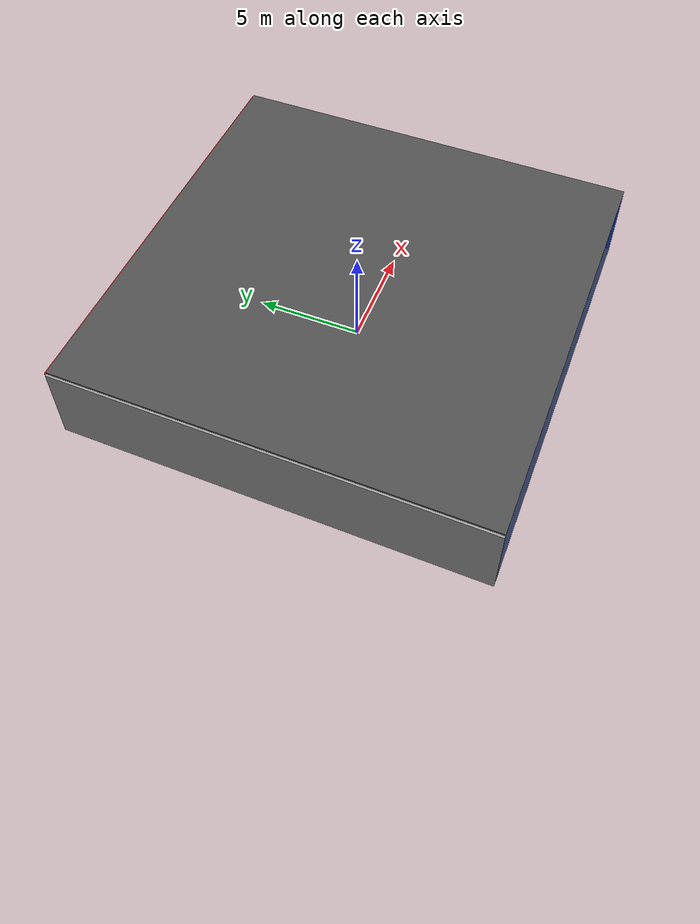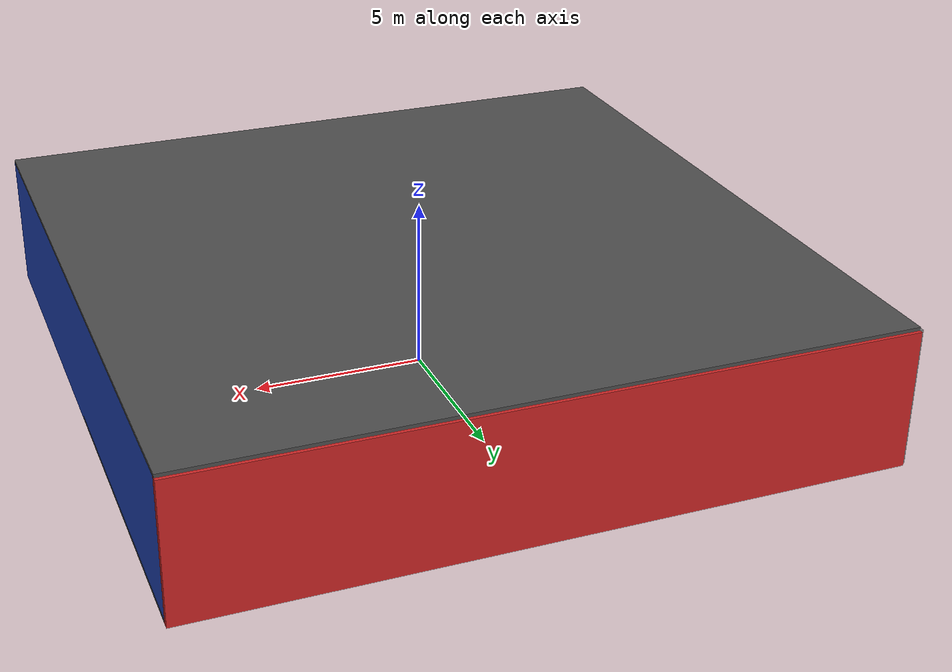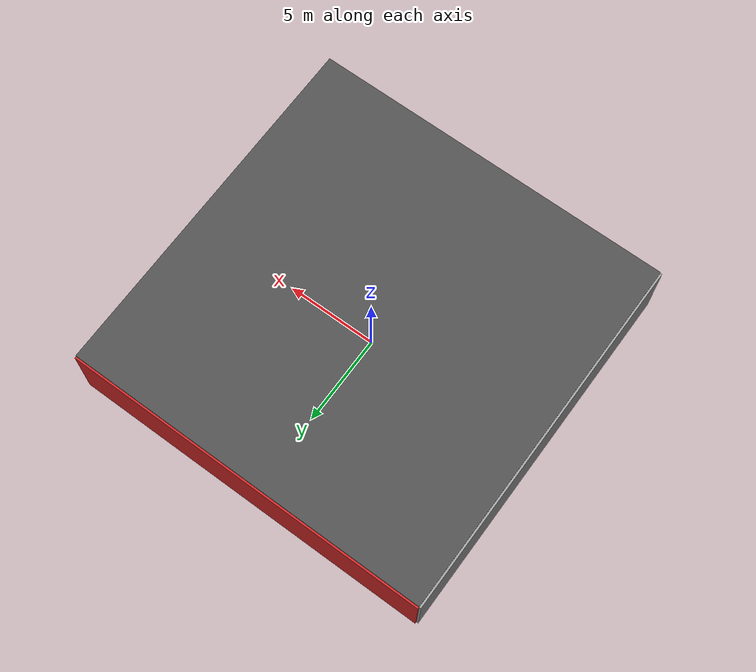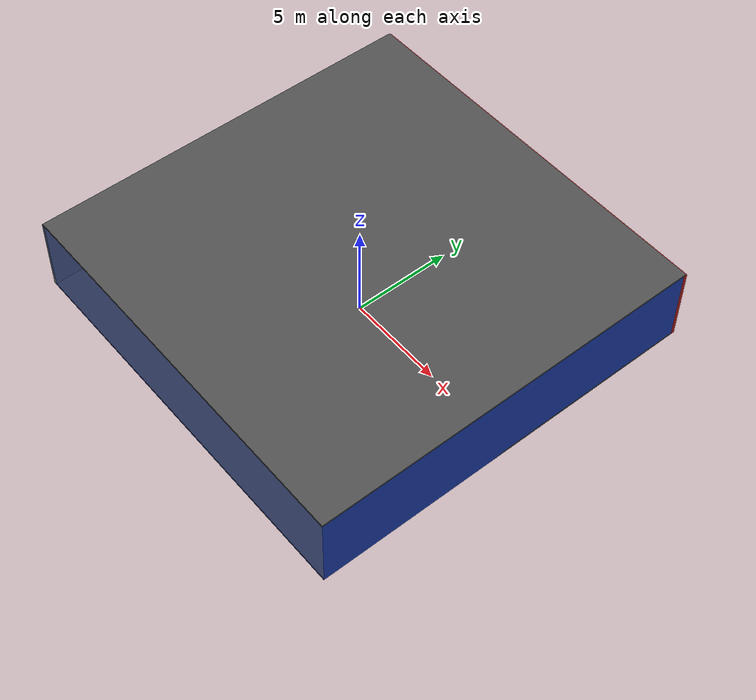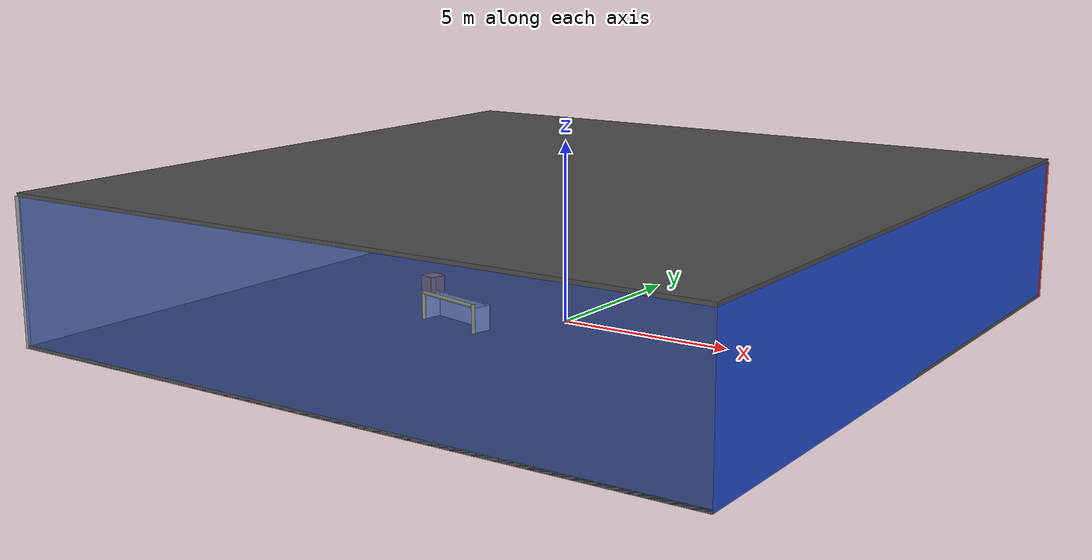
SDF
<sdf version="1.4">
 <world name="default">
  <physics type="ode">
   <max_step_size>0.001</max_step_size>
   <real_time_factor>1</real_time_factor>
   <real_time_update_rate>1000</real_time_update_rate>
   <gravity>0 0 -9.8</gravity>
  </physics>
  <scene><ambient>0.4 0.4 0.4 1</ambient><background>0.7 0.7 0.7 1</background><shadows>1</shadows></scene>
  <model name="Surrounding">
   <static>1</static>
   <link name="Ceiling">
    <collision name="Ceiling_Collision"><geometry><box><size>20 20 0.1</size></box></geometry></collision>
    <visual name="Ceiling_Visual">
     <geometry><box><size>20 20 0.1</size></box></geometry>
     <material>
      <script><uri>file://media/materials/scripts/gazebo.material</uri><name>Gazebo/Road</name></script>
     </material>
    </visual>
    <pose>0 0 4.05 0 0 0</pose>
   </link>
   <link name="Wall_South">
    <collision name="Wall_South_Collision">
     <geometry><box><size>20 0 4</size></box></geometry>
     <pose>0 0 2 0 -0 0</pose>
    </collision>
    <visual name="Wall_South_Visual">
     <pose>0 0 2 0 -0 0</pose>
     <geometry><box><size>20 0 4</size></box></geometry>
     <material>
      <script><uri>file://media/materials/scripts/gazebo.material</uri><name>Gazebo/BlueTransparent</name></script>
     </material>
    </visual>
    <velocity_decay><linear>0</linear><angular>0</angular></velocity_decay>
    <pose>0 -10 0 0 -0 0</pose>
   </link>
   <link name="Wall_East">
    <collision name="Wall_21_Collision">
     <geometry><box><size>20 0 4</size></box></geometry>
     <pose>0 0 2 0 -0 0</pose>
    </collision>
    <visual name="Wall_21_Visual">
     <pose>0 0 2 0 -0 0</pose>
     <geometry><box><size>20 0 4</size></box></geometry>
     <material>
      <script><uri>file://media/materials/scripts/gazebo.material</uri><name>Gazebo/BlueGlow</name></script>
     </material>
    </visual>
    <velocity_decay><linear>0</linear><angular>0</angular></velocity_decay>
    <pose>10 0 0 0 -0 1.5708</pose>
   </link>
   <link name="Wall_North">
    <collision name="Wall_22_Collision">
     <geometry><box><size>20 0.2 4</size></box></geometry>
     <pose>0 0 2 0 -0 0</pose>
    </collision>
    <visual name="Wall_22_Visual">
     <pose>0 0 2 0 -0 0</pose>
     <geometry><box><size>20 0.2 4</size></box></geometry>
     <material>
      <script><uri>file://media/materials/scripts/gazebo.material</uri><name>Gazebo/RedBright</name></script>
     </material>
    </visual>
    <velocity_decay><linear>0</linear><angular>0</angular></velocity_decay>
    <pose>0 10 0 0 -0 0</pose>
   </link>
   <link name="Wall_West">
    <collision name="Wall_23_Collision">
     <geometry><box><size>20 0.2 4</size></box></geometry>
     <pose>0 0 2 0 -0 0</pose>
    </collision>
    <visual name="Wall_23_Visual">
     <pose>0 0 2 0 -0 0</pose>
     <geometry><box><size>20 0.2 4</size></box></geometry>
     <material>
      <script><uri>file://media/materials/scripts/gazebo.material</uri><name>Gazebo/Grey</name></script>
     </material>
    </visual>
    <velocity_decay><linear>0</linear><angular>0</angular></velocity_decay>
    <pose>-10 0 0 0 0 -1.5708</pose>
   </link>
   <link name="Ground_link">
    <collision name="collision">
     <pose>0 0 .05 0 -0 0</pose>
     <geometry><box><size>20 20 0.1</size></box></geometry>
    </collision>
    <visual name="visual">
     <pose>0 0 .05 0 -0 0</pose>
     <geometry><box><size>20 20 0.1</size></box></geometry>
     <material>
      <script><uri>file://media/materials/scripts/gazebo.material</uri><name>Gazebo/Road</name></script>
     </material>
    </visual>
   </link>
   <static>1</static>
  </model>
  <spherical_coordinates>
   <surface_model>EARTH_WGS84</surface_model>
   <latitude_deg>0</latitude_deg>
   <longitude_deg>0</longitude_deg>
   <elevation>0</elevation>
   <heading_deg>0</heading_deg>
  </spherical_coordinates>
  <light name="lightball_0" type="diffuse">
   <diffuse>0.8 0.8 0.8 1</diffuse>
   <specular>0.2 0.2 0.2 1</specular>
   <attenuation>
    <range>100</range>
    <constant>0.7</constant>
    <linear>0.01</linear>
    <quadratic>0.001</quadratic>
   </attenuation>
   <direction>-0.5 0.1 -0.9</direction>
   <pose>0.191280336402 -2.83484716382 1.51824119883 0 0 0</pose>
  </light>
  <light name="lightball_1" type="diffuse">
   <diffuse>0.8 0.8 0.8 1</diffuse>
   <specular>0.2 0.2 0.2 1</specular>
   <attenuation>
    <range>100</range>
    <constant>0.7</constant>
    <linear>0.01</linear>
    <quadratic>0.001</quadratic>
   </attenuation>
   <direction>-0.5 0.1 -0.9</direction>
   <pose>-4.74406419118 -4.68822495474 0.637327763806 0 0 0</pose>
  </light>
  <light name="lightball_2" type="diffuse">
   <diffuse>0.8 0.8 0.8 1</diffuse>
   <specular>0.2 0.2 0.2 1</specular>
   <attenuation>
    <range>100</range>
    <constant>0.7</constant>
    <linear>0.01</linear>
    <quadratic>0.001</quadratic>
   </attenuation>
   <direction>-0.5 0.1 -0.9</direction>
   <pose>1.33339956919 -6.12176110002 1.13626976547 0 0 0</pose>
  </light>
  <light name="lightball_3" type="diffuse">
   <diffuse>0.8 0.8 0.8 1</diffuse>
   <specular>0.2 0.2 0.2 1</specular>
   <attenuation>
    <range>100</range>
    <constant>0.7</constant>
    <linear>0.01</linear>
    <quadratic>0.001</quadratic>
   </attenuation>
   <direction>-0.5 0.1 -0.9</direction>
   <pose>-1.06995290164 2.67700981756 2.48005544811 0 0 0</pose>
  </light>
  <light name="lightball_4" type="diffuse">
   <diffuse>0.8 0.8 0.8 1</diffuse>
   <specular>0.2 0.2 0.2 1</specular>
   <attenuation>
    <range>100</range>
    <constant>0.7</constant>
    <linear>0.01</linear>
    <quadratic>0.001</quadratic>
   </attenuation>
   <direction>-0.5 0.1 -0.9</direction>
   <pose>0.842240661863 -8.68212882666 3.33693321323 0 0 0</pose>
  </light>
  <light name="lightball_5" type="diffuse">
   <diffuse>0.8 0.8 0.8 1</diffuse>
   <specular>0.2 0.2 0.2 1</specular>
   <attenuation>
    <range>100</range>
    <constant>0.7</constant>
    <linear>0.01</linear>
    <quadratic>0.001</quadratic>
   </attenuation>
   <direction>-0.5 0.1 -0.9</direction>
   <pose>-7.98033819509 -8.11846850825 3.0375448088 0 0 0</pose>
  </light>
  <light name="lightball_6" type="diffuse">
   <diffuse>0.8 0.8 0.8 1</diffuse>
   <specular>0.2 0.2 0.2 1</specular>
   <attenuation>
    <range>100</range>
    <constant>0.7</constant>
    <linear>0.01</linear>
    <quadratic>0.001</quadratic>
   </attenuation>
   <direction>-0.5 0.1 -0.9</direction>
   <pose>3.53611609836 -2.02255898044 2.00264631274 0 0 0</pose>
  </light>
  <light name="lightball_7" type="diffuse">
   <diffuse>0.8 0.8 0.8 1</diffuse>
   <specular>0.2 0.2 0.2 1</specular>
   <attenuation>
    <range>100</range>
    <constant>0.7</constant>
    <linear>0.01</linear>
    <quadratic>0.001</quadratic>
   </attenuation>
   <direction>-0.5 0.1 -0.9</direction>
   <pose>7.5614917172 7.01461073559 1.57118661873 0 0 0</pose>
  </light>
  <light name="lightball_8" type="diffuse">
   <diffuse>0.8 0.8 0.8 1</diffuse>
   <specular>0.2 0.2 0.2 1</specular>
   <attenuation>
    <range>100</range>
    <constant>0.7</constant>
    <linear>0.01</linear>
    <quadratic>0.001</quadratic>
   </attenuation>
   <direction>-0.5 0.1 -0.9</direction>
   <pose>1.03829919955 2.73984341085 1.67860775273 0 0 0</pose>
  </light>
  <light name="lightball_9" type="diffuse">
   <diffuse>0.8 0.8 0.8 1</diffuse>
   <specular>0.2 0.2 0.2 1</specular>
   <attenuation>
    <range>100</range>
    <constant>0.7</constant>
    <linear>0.01</linear>
    <quadratic>0.001</quadratic>
   </attenuation>
   <direction>-0.5 0.1 -0.9</direction>
   <pose>3.32816255768 -3.73276493031 2.31890180603 0 0 0</pose>
  </light>
  <light name="lightball_10" type="diffuse">
   <diffuse>0.8 0.8 0.8 1</diffuse>
   <specular>0.2 0.2 0.2 1</specular>
   <attenuation>
    <range>100</range>
    <constant>0.7</constant>
    <linear>0.01</linear>
    <quadratic>0.001</quadratic>
   </attenuation>
   <direction>-0.5 0.1 -0.9</direction>
   <pose>-7.10364855116 3.09788370463 3.59370808445 0 0 0</pose>
  </light>
  <include><uri>model://cabinet</uri><pose>-3.81418751734 -1.05605241492 0 0 0 2.84198689485</pose></include>
  <include><uri>model://cabinet</uri><pose>-3.54000353792 3.72271137826 0 0 0 0.0178481621217</pose></include>
  <include>
   <uri>model://robocup_3Dsim_goal</uri>
   <pose>-2.15733321375 -2.49215542456 0 0 0 1.34859652349</pose>
  </include>
  <include>
   <uri>model://construction_cone</uri>
   <pose>-0.324380697114 4.51565827044 0 0 0 0.860885223399</pose>
  </include>
  <include>
   <uri>model://robocup_3Dsim_goal</uri>
   <pose>-1.7918798433 8.17616632613 0 0 0 1.92188889426</pose>
  </include>
  <include><uri>model://table</uri><pose>4.96271247911 8.41531697393 0 0 0 0.795623769068</pose></include>
  <include>
   <uri>model://robocup_3Dsim_goal</uri>
   <pose>8.50251057931 8.1073422006 0 0 0 2.29801559315</pose>
  </include>
 </world>
</sdf>

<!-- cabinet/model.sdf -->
<sdf version="1.5">
  <model name="cabinet">
    <static>true</static>
    <link name="cabinet_bottom_plate">
      <inertial>
        <pose>0 0 -1 0 0 0</pose>
        <inertia>
          <ixx>2.050000</ixx>
          <ixy>0</ixy>
          <ixz>0</ixz>
          <iyy>2.050000</iyy>
          <iyz>0</iyz>
          <izz>2.050000</izz>
        </inertia>
        <mass>25.000000</mass>
      </inertial>
      <collision name="cabinet_bottom_plate_geom">
        <pose>0 0 0.010000 0 0 0</pose>
        <geometry>
          <box>
            <size>0.450000 0.450000 0.020000</size>
          </box>
        </geometry>
      </collision>
      <visual name="cabinet_bottom_plate_geom_visual">
        <pose>0 0 0.010000 0 0 0</pose>
        <geometry>
          <box>
            <size>0.450000 0.450000 0.020000</size>
          </box>
        </geometry>
        <material>
          <script>
            <uri>model://media/materials/scripts/gazebo.material</uri>
            <name>Gazebo/Wood</name>
          </script>
        </material>
      </visual>
      <collision name="cabinet_bottom_plate_geom_cabinet_back_plate">
        <pose>0.235000 0 0.510000 0 0 0</pose>
        <geometry>
          <box>
            <size>0.020000 0.450000 1.020000</size>
          </box>
        </geometry>
      </collision>
      <visual name="cabinet_bottom_plate_geom_cabinet_back_plate_visual">
        <pose>0.235000 0 0.510000 0 0 0</pose>
        <geometry>
          <box>
            <size>0.020000 0.450000 1.020000</size>
          </box>
        </geometry>
        <material>
          <script>
            <uri>model://media/materials/scripts/gazebo.material</uri>
            <name>Gazebo/Wood</name>
          </script>
        </material>
      </visual>
      <collision name="cabinet_bottom_plate_geom_cabinet_left_plate">
        <pose>0 0.235000 0.510000 0 0 0</pose>
        <geometry>
          <box>
            <size>0.450000 0.020000 1.020000</size>
          </box>
        </geometry>
      </collision>
      <visual name="cabinet_bottom_plate_geom_cabinet_left_plate_visual">
        <pose>0 0.235000 0.510000 0 0 0</pose>
        <geometry>
          <box>
            <size>0.450000 0.020000 1.020000</size>
          </box>
        </geometry>
        <material>
          <script>
            <uri>model://media/materials/scripts/gazebo.material</uri>
            <name>Gazebo/Wood</name>
          </script>
        </material>
      </visual>
      <collision name="cabinet_bottom_plate_geom_cabinet_middle_plate">
        <pose>0 0 0.510000 0 0 0</pose>
        <geometry>
          <box>
            <size>0.450000 0.450000 0.020000</size>
          </box>
        </geometry>
      </collision>
      <visual name="cabinet_bottom_plate_geom_cabinet_middle_plate_visual">
        <pose>0 0 0.510000 0 0 0</pose>
        <geometry>
          <box>
            <size>0.450000 0.450000 0.020000</size>
          </box>
        </geometry>
        <material>
          <script>
            <uri>model://media/materials/scripts/gazebo.material</uri>
            <name>Gazebo/Wood</name>
          </script>
        </material>
      </visual>
      <collision name="cabinet_bottom_plate_geom_cabinet_right_plate">
        <pose>0 -0.235000 0.510000 0 0 0</pose>
        <geometry>
          <box>
            <size>0.450000 0.020000 1.020000</size>
          </box>
        </geometry>
      </collision>
      <visual name="cabinet_bottom_plate_geom_cabinet_right_plate_visual">
        <pose>0 -0.235000 0.510000 0 0 0</pose>
        <geometry>
          <box>
            <size>0.450000 0.020000 1.020000</size>
          </box>
        </geometry>
        <material>
          <script>
            <uri>model://media/materials/scripts/gazebo.material</uri>
            <name>Gazebo/Wood</name>
          </script>
        </material>
      </visual>
      <collision name="cabinet_bottom_plate_geom_cabinet_top_plate">
        <pose>0 0 1.010000 0 0 0</pose>
        <geometry>
          <box>
            <size>0.450000 0.450000 0.020000</size>
          </box>
        </geometry>
      </collision>
      <visual name="cabinet_bottom_plate_geom_cabinet_top_plate_visual">
        <pose>0 0 1.010000 0 0 0</pose>
        <geometry>
          <box>
            <size>0.450000 0.450000 0.020000</size>
          </box>
        </geometry>
        <material>
          <script>
            <uri>model://media/materials/scripts/gazebo.material</uri>
            <name>Gazebo/Wood</name>
          </script>
        </material>
      </visual>
    </link>
  </model>
</sdf>

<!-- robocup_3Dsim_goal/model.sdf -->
<sdf version="1.5">
  <model name="robocup_3d_goal">
    <static>true</static>
    <link name="left_post">
      <pose>0 1.05 0.45 0 0 0</pose>
      <collision name="collision">
        <geometry>
          <cylinder>
            <radius>0.05</radius>
            <length>0.9</length>
          </cylinder>
        </geometry>
      </collision>
      <visual name="visual">
        <geometry>
          <cylinder>
            <radius>0.05</radius>
            <length>0.9</length>
          </cylinder>
        </geometry>
        <material>
          <script>
            <uri>file://media/materials/scripts/gazebo.material</uri>
            <name>Gazebo/ZincYellow</name>
          </script>
        </material>
      </visual>
    </link>
    <link name="left_support_horiz_lower">
      <pose>0.30 1.05 0.01 0 0 0</pose>
      <collision name="collision">
        <geometry>
          <box>
            <size>0.50 0.02 0.02</size>
          </box>
        </geometry>
      </collision>
      <visual name="visual">
        <geometry>
          <box>
            <size>0.50 0.02 0.02</size>
          </box>
        </geometry>
        <material>
          <script>
            <uri>file://media/materials/scripts/gazebo.material</uri>
            <name>Gazebo/White</name>
          </script>
        </material>
      </visual>
    </link>
    <link name="left_support_horiz_upper">
      <pose>0.30 1.05 0.79 0 0 0</pose>
      <collision name="collision">
        <geometry>
          <box>
            <size>0.50 0.02 0.02</size>
          </box>
        </geometry>
      </collision>
      <visual name="visual">
        <geometry>
          <box>
            <size>0.50 0.02 0.02</size>
          </box>
        </geometry>
        <material>
          <script>
            <uri>file://media/materials/scripts/gazebo.material</uri>
            <name>Gazebo/White</name>
          </script>
        </material>
      </visual>
    </link>
    <link name="left_support_vertical">
      <pose>0.56 1.05 0.4 0 1.5708 0</pose>
      <collision name="collision">
        <geometry>
          <box>
            <size>0.80 0.02 0.02</size>
          </box>
        </geometry>
      </collision>
      <visual name="visual">
        <geometry>
          <box>
            <size>0.80 0.02 0.02</size>
          </box>
        </geometry>
        <material>
          <script>
            <uri>file://media/materials/scripts/gazebo.material</uri>
            <name>Gazebo/White</name>
          </script>
        </material>
      </visual>
    </link>
    <link name="right_support_horiz_lower">
      <pose>0.30 -1.05 0.01 0 0 0</pose>
      <collision name="collision">
        <geometry>
          <box>
            <size>0.50 0.02 0.02</size>
          </box>
        </geometry>
      </collision>
      <visual name="visual">
        <geometry>
          <box>
            <size>0.50 0.02 0.02</size>
          </box>
        </geometry>
        <material>
          <script>
            <uri>file://media/materials/scripts/gazebo.material</uri>
            <name>Gazebo/White</name>
          </script>
        </material>
      </visual>
    </link>
    <link name="right_support_horiz_upper">
      <pose>0.30 -1.05 0.79 0 0 0</pose>
      <collision name="collision">
        <geometry>
          <box>
            <size>0.50 0.02 0.02</size>
          </box>
        </geometry>
      </collision>
      <visual name="visual">
        <geometry>
          <box>
            <size>0.50 0.02 0.02</size>
          </box>
        </geometry>
        <material>
          <script>
            <uri>file://media/materials/scripts/gazebo.material</uri>
            <name>Gazebo/White</name>
          </script>
        </material>
      </visual>
    </link>
    <link name="right_support_vertical">
      <pose>0.56 -1.05 0.4 0 1.5708 0</pose>
      <collision name="collision">
        <geometry>
          <box>
            <size>0.80 0.02 0.02</size>
          </box>
        </geometry>
      </collision>
      <visual name="visual">
        <geometry>
          <box>
            <size>0.80 0.02 0.02</size>
          </box>
        </geometry>
        <material>
          <script>
            <uri>file://media/materials/scripts/gazebo.material</uri>
            <name>Gazebo/White</name>
          </script>
        </material>
      </visual>
    </link>
    <link name="center_support_horiz_lower">
      <pose>0.56 0 0.01 0 1.5708 0</pose>
      <collision name="collision">
        <geometry>
          <box>
            <size>0.02 2.08 0.02</size>
          </box>
        </geometry>
      </collision>
      <visual name="visual">
        <geometry>
          <box>
            <size>0.02 2.08 0.02</size>
          </box>
        </geometry>
        <material>
          <script>
            <uri>file://media/materials/scripts/gazebo.material</uri>
            <name>Gazebo/White</name>
          </script>
        </material>
      </visual>
    </link>
    <link name="center_support_horiz_upper">
      <pose>0.56 0 0.79 0 1.5708 0</pose>
      <collision name="collision">
        <geometry>
          <box>
            <size>0.02 2.08 0.02</size>
          </box>
        </geometry>
      </collision>
      <visual name="visual">
        <geometry>
          <box>
            <size>0.02 2.08 0.02</size>
          </box>
        </geometry>
        <material>
          <script>
            <uri>file://media/materials/scripts/gazebo.material</uri>
            <name>Gazebo/White</name>
          </script>
        </material>
      </visual>
    </link>
    <link name="right_post">
      <pose>0 -1.05 0.45 0 0 0</pose>
      <collision name="collision">
        <geometry>
          <cylinder>
            <radius>0.05</radius>
            <length>0.9</length>
          </cylinder>
        </geometry>
      </collision>
      <visual name="visual">
        <geometry>
          <cylinder>
            <radius>0.05</radius>
            <length>0.9</length>
          </cylinder>
        </geometry>
        <material>
          <script>
            <uri>file://media/materials/scripts/gazebo.material</uri>
            <name>Gazebo/ZincYellow</name>
          </script>
        </material>
      </visual>
    </link>
    <link name="crossbar">
      <pose>0 0 0.85 1.57 1.57 0</pose>
      <collision name="collision">
        <geometry>
          <cylinder>
            <radius>0.05</radius>
            <length>2.0</length>
          </cylinder>
        </geometry>
      </collision>
      <visual name="visual">
        <geometry>
          <cylinder>
            <radius>0.05</radius>
            <length>2.0</length>
          </cylinder>
        </geometry>
        <material>
          <script>
            <uri>file://media/materials/scripts/gazebo.material</uri>
            <name>Gazebo/ZincYellow</name>
          </script>
        </material>
      </visual>
    </link>
    <link name="center_net">
      <pose>0.56 0 0.40 0 0 0</pose>
      <collision name="collision">
        <geometry>
          <box>
            <size>0.01 2.1 0.80</size>
          </box>
        </geometry>
      </collision>
      <visual name="visual">
        <geometry>
          <box>
            <size>0.01 2.1 0.80</size>
          </box>
        </geometry>
        <material>
          <script>
            <uri>model://../model_source/models/robocup09_spl_field/materials/scripts/</uri>
            <uri>model://../model_source/models/robocup09_spl_field/materials/textures/</uri>
            <name>RoboCup/Net</name>
          </script>
        </material>
      </visual>
    </link>
    <link name="left_net">
      <pose>0.30 1.05 0.40 0 0 0</pose>
      <collision name="collision">
        <geometry>
          <box>
            <size>0.50 0.01 0.76</size>
          </box>
        </geometry>
      </collision>
      <visual name="visual">
        <geometry>
          <box>
            <size>0.50 0.01 0.76</size>
          </box>
        </geometry>
        <material>
          <script>
            <uri>model://../model_source/models/robocup09_spl_field/materials/scripts/</uri>
            <uri>model://../model_source/models/robocup09_spl_field/materials/textures/</uri>
            <name>RoboCup/Net</name>
          </script>
        </material>
      </visual>
    </link>
    <link name="right_net">
      <pose>0.30 -1.05 0.40 0 0 0</pose>
      <collision name="collision">
        <geometry>
          <box>
            <size>0.50 0.01 0.76</size>
          </box>
        </geometry>
      </collision>
      <visual name="visual">
        <geometry>
          <box>
            <size>0.50 0.01 0.76</size>
          </box>
        </geometry>
        <material>
          <script>
            <uri>model://../model_source/models/robocup09_spl_field/materials/scripts/</uri>
            <uri>model://../model_source/models/robocup09_spl_field/materials/textures/</uri>
            <name>RoboCup/Net</name>
          </script>
        </material>
      </visual>
    </link>
  </model>
</sdf>

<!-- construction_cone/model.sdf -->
<sdf version="1.5">
  <model name="Construction Cone">
    <link name="link">
      <collision name="collision">
        <geometry>
          <mesh>
            <scale>10 10 10</scale>
            <uri>file://isr-testbed/construction_cone/meshes/construction_cone.dae</uri>
          </mesh>
        </geometry>
      </collision>
      <visual name="visual">
        <geometry>
          <mesh>
            <scale>10 10 10</scale>
            <uri>file://isr-testbed/construction_cone/meshes/construction_cone.dae</uri>
          </mesh>
        </geometry>
      </visual>
    </link>
  </model>
</sdf>

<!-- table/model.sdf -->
<sdf version="1.5">
  <model name="table">
    <static>true</static>
    <link name="link">
      <collision name="surface">
        <pose>0 0 1.0 0 0 0</pose>
        <geometry>
          <box>
            <size>1.5 0.8 0.03</size>
          </box>
        </geometry>
        <surface>
          <friction>
            <ode>
              <mu>0.6</mu>
              <mu2>0.6</mu2>
            </ode>
          </friction>
        </surface>
      </collision>
      <visual name="visual1">
        <pose>0 0 1.0 0 0 0</pose>
        <geometry>
          <box>
            <size>1.5 0.8 0.03</size>
          </box>
        </geometry>
        <material>
          <script>
            <uri>model://media/materials/scripts/gazebo.material</uri>
            <name>Gazebo/Wood</name>
          </script>
        </material>
      </visual>
      <collision name="front_left_leg">
        <pose>0.68 0.38 0.5 0 0 0</pose>
        <geometry>
          <cylinder>
            <radius>0.02</radius>
            <length>1.0</length>
          </cylinder>
        </geometry>
      </collision>
      <visual name="front_left_leg">
        <pose>0.68 0.38 0.5 0 0 0</pose>
        <geometry>
          <cylinder>
            <radius>0.02</radius>
            <length>1.0</length>
          </cylinder>
        </geometry>
        <material>
          <script>
            <uri>model://media/materials/scripts/gazebo.material</uri>
            <name>Gazebo/Grey</name>
          </script>
        </material>
      </visual>
      <collision name="front_right_leg">
        <pose>0.68 -0.38 0.5 0 0 0</pose>
        <geometry>
          <cylinder>
            <radius>0.02</radius>
            <length>1.0</length>
          </cylinder>
        </geometry>
      </collision>
      <visual name="front_right_leg">
        <pose>0.68 -0.38 0.5 0 0 0</pose>
        <geometry>
          <cylinder>
            <radius>0.02</radius>
            <length>1.0</length>
          </cylinder>
        </geometry>
        <material>
          <script>
            <uri>model://media/materials/scripts/gazebo.material</uri>
            <name>Gazebo/Grey</name>
          </script>
        </material>
      </visual>
      <collision name="back_right_leg">
        <pose>-0.68 -0.38 0.5 0 0 0</pose>
        <geometry>
          <cylinder>
            <radius>0.02</radius>
            <length>1.0</length>
          </cylinder>
        </geometry>
      </collision>
      <visual name="back_right_leg">
        <pose>-0.68 -0.38 0.5 0 0 0</pose>
        <geometry>
          <cylinder>
            <radius>0.02</radius>
            <length>1.0</length>
          </cylinder>
        </geometry>
        <material>
          <script>
            <uri>model://media/materials/scripts/gazebo.material</uri>
            <name>Gazebo/Grey</name>
          </script>
        </material>
      </visual>
      <collision name="back_left_leg">
        <pose>-0.68 0.38 0.5 0 0 0</pose>
        <geometry>
          <cylinder>
            <radius>0.02</radius>
            <length>1.0</length>
          </cylinder>
        </geometry>
      </collision>
      <visual name="back_left_leg">
        <pose>-0.68 0.38 0.5 0 0 0</pose>
        <geometry>
          <cylinder>
            <radius>0.02</radius>
            <length>1.0</length>
          </cylinder>
        </geometry>
        <material>
          <script>
            <uri>model://media/materials/scripts/gazebo.material</uri>
            <name>Gazebo/Grey</name>
          </script>
        </material>
      </visual>
    </link>
  </model>
</sdf>
